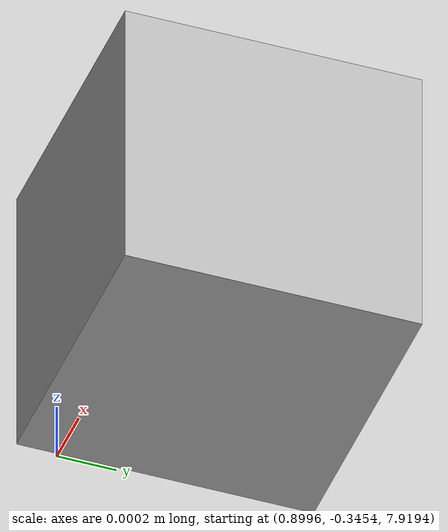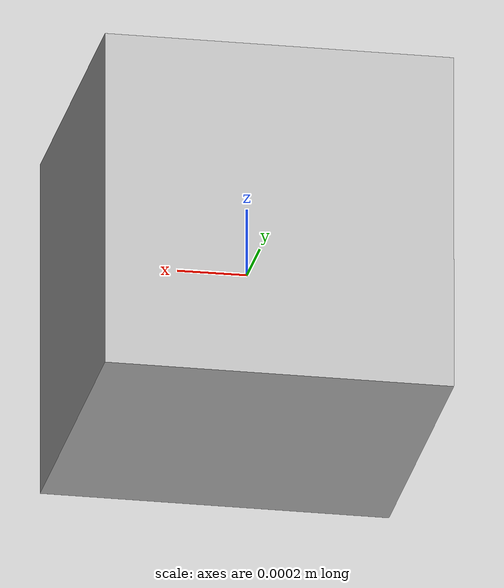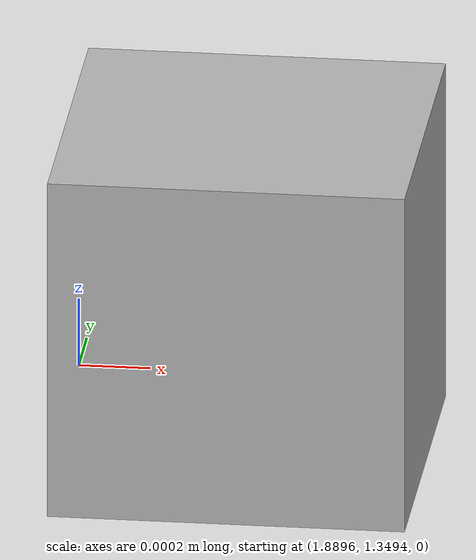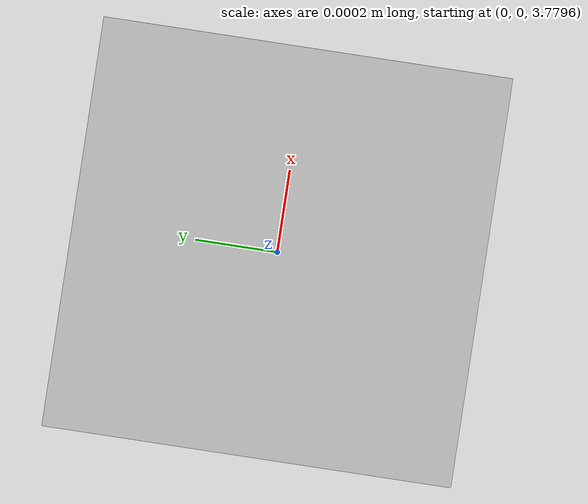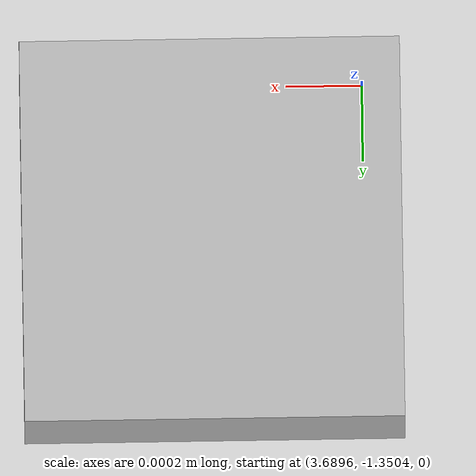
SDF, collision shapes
<?xml version="1.0" ?>
<sdf version="1.5">
  <model name="open_manipulator_p">
  <pose>0.0 0.0 0.0 0.0 0.0 0.0</pose>

    <link name="world"/>

    <!-- link 1 -->
    <link name="link1">
      <pose relative_to="world_fixed">0 0 0 0 -0 0</pose>
      <visual name="link1_visual">
        <pose>0 0 0 0 0 0</pose>
        <geometry>
          <mesh>
            <uri>model://open_manipulator_p/meshes/link1.stl</uri>
            <scale>0.001 0.001 0.001</scale>
          </mesh>
        </geometry>
        <material>grey</material>
      </visual>

      <collision name="link1_collision">
        <pose>0 0 0 0 0 0</pose>
        <geometry>
          <box>
            <size>0.001 0.001 0.001</size>
          </box>
        </geometry>
      </collision>

      <inertial>
        <pose>0 0 0 0 0 0</pose>
        <mass>9.4360595e-01</mass>
        <inertia>
          <ixx>1.0e-03</ixx>
          <ixy>0.0</ixy>
          <ixz>0.0</ixz>
          <iyx>0.0</iyx>
          <iyy>1.0e-03</iyy>
          <iyz>0.0</iyz>
          <izx>0.0</izx>
          <izy>0.0</izy>
          <izz>1.0e-03</izz>
        </inertia>
      </inertial>
    </link>

    <!-- link 2 -->
    <link name="link2">
      <pose relative_to="joint1">0 0 0 0 -0 0</pose>
      <visual name="link2_visual">
        <pose>0 0 0 0 0 0</pose>
        <geometry>
          <mesh>
            <uri>model://open_manipulator_p/meshes/link2.stl</uri>
            <scale>0.001 0.001 0.001</scale>
          </mesh>
        </geometry>
        <material>grey</material>
      </visual>

      <collision name="link2_collision">
        <pose>0 0 0 0 0 0</pose>
        <geometry>
          <box>
            <size>0.001 0.001 0.001</size>
          </box>
        </geometry>
      </collision>

      <inertial>
        <pose>0 0 0 0 0 0</pose>
        <mass>9.4360595e-01</mass>
        <inertia>
          <ixx>1.5694005e-03</ixx>
          <ixy>0.0</ixy>
          <ixz>0.0</ixz>
          <iyx>0.0</iyx>
          <iyy>4.5593385e-04</iyy>
          <iyz>6.4581824e-09</iyz>
          <izx>0.0</izx>
          <izy>6.4581824e-09</izy>
          <izz>1.5561809e-03</izz>
        </inertia>
      </inertial>
    </link>

    <!-- link 3 -->
    <link name="link3">
      <pose relative_to="joint2">0 0 0 0 -0 0</pose>
      <visual name="link3_visual">
        <pose>0 0 0 0 0 0</pose>
        <geometry>
          <mesh>
            <uri>model://open_manipulator_p/meshes/link3.stl</uri>
            <scale>0.001 0.001 0.001</scale>
          </mesh>
        </geometry>
        <material>grey</material>
      </visual>

      <collision name="link3_collision">
        <pose>0 0 0 0 0 0</pose>
        <geometry>
          <box>
            <size>0.001 0.001 0.001</size>
          </box>
        </geometry>
      </collision>

      <inertial>
        <pose>0 0 0 0 0 0</pose>
        <mass>1.3825862e+00</mass>
        <inertia>
          <ixx>6.7630430e-02</ixx>
          <ixy>-1.9988597e-05</ixy>
          <ixz>-5.7477571e-03</ixz>
          <iyx>-1.9988597e-05</iyx>
          <iyy>6.7208001e-024</iyy>
          <iyz>7.4823203e-05</iyz>
          <izx>-5.7477571e-03</izx>
          <izy>7.4823203e-05</izy>
          <izz>2.6031353e-03</izz>
        </inertia>
      </inertial>
    </link>

    <!-- link 4 -->
    <link name="link4">
      <pose relative_to="joint3">0 0 0 0 -0 0</pose>
      <visual name="link4_visual">
        <pose>0 0 0 0 0 0</pose>
        <geometry>
          <mesh>
            <uri>model://open_manipulator_p/meshes/link4.stl</uri>
            <scale>0.001 0.001 0.001</scale>
          </mesh>
        </geometry>
        <material>grey</material>
      </visual>

      <collision name="link4_collision">
        <pose>0 0 0 0 0 0</pose>
        <geometry>
          <box>
            <size>0.001 0.001 0.001</size>
          </box>
        </geometry>
      </collision>

      <inertial>
        <pose>0 0 0 0 0 0</pose>
        <mass>1.2126965e+00</mass>
        <inertia>
          <ixx>1.7985424e-01</ixx>
          <ixy>-9.9417476e-07</ixy>
          <ixz>-8.1564441e-053</ixz>
          <iyx>-9.9417476e-07</iyx>
          <iyy>1.7948679e-01</iyy>
          <iyz>-1.7705853e-05</iyz>
          <izx>-8.1564441e-05</izx>
          <izy>-1.7705853e-05</izy>
          <izz>1.1422079e-03</izz>
        </inertia>
      </inertial>
    </link>

    <!-- link 5 -->
    <link name="link5">
      <pose relative_to="joint4">0 0 0 0 -0 0</pose>
      <visual name="link5_visual">
        <pose>0 0 0 0 0 0</pose>
        <geometry>
          <mesh>
            <uri>model://open_manipulator_p/meshes/link5.stl</uri>
            <scale>0.001 0.001 0.001</scale>
          </mesh>
        </geometry>
        <material>grey</material>
      </visual>

      <collision name="link5_collision">
        <pose>0 0 0 0 0 0</pose>
        <geometry>
          <box>
            <size>0.001 0.001 0.001</size>
          </box>
        </geometry>
      </collision>

      <inertial>
        <pose>0 0 0 0 0 0</pose>
        <mass>4.6635550e-01</mass>
        <inertia>
          <ixx>1.2357713e-01</ixx>
          <ixy>-1.9465317e-09</ixy>
          <ixz>5.1228604e-07</ixz>
          <iyx>-1.9465317e-09</iyx>
          <iyy>1.2339567e-01</iyy>
          <iyz>5.3769657e-04</iyz>
          <izx>5.1228604e-07</izx>
          <izy>5.3769657e-04</izy>
          <izz>3.3216863e-04</izz>
        </inertia>
      </inertial>
    </link>

    <!-- link 6 -->
    <link name="link6">
      <pose relative_to="joint5">0 0 0 0 -0 0</pose>
      <visual name="link6_visual">
        <pose>0 0 0 0 0 0</pose>
        <geometry>
          <mesh>
            <uri>model://open_manipulator_p/meshes/link6.stl</uri>
            <scale>0.001 0.001 0.001</scale>
          </mesh>
        </geometry>
        <material>grey</material>
      </visual>

      <collision name="link6_collision">
        <pose>0 0 0 0 0 0</pose>
        <geometry>
          <box>
            <size>0.001 0.001 0.001</size>
          </box>
        </geometry>
      </collision>

      <inertial>
        <pose>0 0 0 0 0 0</pose>
        <mass>4.2561606e-01</mass>
        <inertia>
          <ixx>1.4881319e-01</ixx>
          <ixy>0.0000000e+00</ixy>
          <ixz>5.3435266e-07</ixz>
          <iyx>0.0000000e+00</iyx>
          <iyy>1.4872708e-01</iyy>
          <iyz>-4.3708754e-05</iyz>
          <izx>5.3435266e-07</izx>
          <izy>-4.3708754e-05</izy>
          <izz>2.1040082e-04</izz>
        </inertia>
      </inertial>
    </link>

    <!-- end link -->
    <link name="end_link">
      <pose relative_to="joint6">0 0 0 0 -0 0</pose>
      <visual name="end_link_visual">
        <pose>0 0 0 0 0 0</pose>
        <geometry>
          <mesh>
            <uri>model://open_manipulator_p/meshes/end_link.stl</uri>
            <scale>0.001 0.001 0.001</scale>
          </mesh>
        </geometry>
        <material>grey</material>
      </visual>

      <collision name="end_link_collision">
        <pose>0 0 0 0 0 0</pose>
        <geometry>
          <box>
            <size>0.001 0.001 0.001</size>
          </box>
        </geometry>
      </collision>

      <inertial>
        <pose>0 0 0 0 0 0</pose>
        <mass>0.01919</mass>
        <inertia>
          <ixx>1.25e-4</ixx>
          <ixy>0.0</ixy>
          <ixz>0.0</ixz>
          <iyy>1.25e-4</iyy>
          <iyz>0.0</iyz>
          <izz>1.25e-4</izz>
        </inertia>
      </inertial>
    </link>

    <!-- World fixed joint-->
    <joint name="world_fixed" type="fixed">
      <pose>0 0 0 0 0 0</pose>
      <parent>world</parent>
      <child>link1</child>
    </joint>

    <!-- Joint 1 -->
    <joint name="joint1" type="revolute">
      <parent>link1</parent>
      <child>link2</child>
      <pose>0.0 0.0 0.126 0 0 0</pose>
      <axis>
        <xyz>0 0 1</xyz>
      </axis>
      <limit velocity="6.5" effort="1000" lower="-1.57" upper="1.57" />
      <dynamics damping="0.7"/>
    </joint>

    <!-- Joint 2 -->
    <joint name="joint2" type="revolute">
      <parent>link2</parent>
      <child>link3</child>
      <pose>0.0 0.069 0.033 0 0 0</pose>
      <axis>
        <xyz>0 1 0</xyz>
      </axis>
      <limit velocity="6.5" effort="1000" lower="-1.57" upper="1.57" />
      <dynamics damping="0.7"/>
    </joint>

    <!-- Joint 3 -->
    <joint name="joint3" type="revolute">
      <parent>link3</parent>
      <child>link4</child>
      <pose>0.03000 -0.01150 0.26400 0 0 0</pose>
      <axis>
        <xyz>0 1 0</xyz>
      </axis>
      <limit velocity="6.5" effort="1000" lower="-1.57" upper="1.57" />
      <dynamics damping="0.7"/>
    </joint>

    <!-- Joint 4 -->
    <joint name="joint4" type="revolute">
      <parent>link4</parent>
      <child>link5</child>
      <pose>0.19500 -0.05750 0.03000 0 0 0</pose>
      <axis>
        <xyz>1 0 0</xyz>
      </axis>
      <limit velocity="6.5" effort="1000" lower="-1.57" upper="1.57" />
      <dynamics damping="0.7"/>
    </joint>

    <!-- Joint 5 -->
    <joint name="joint5" type="revolute">
      <parent>link5</parent>
      <child>link6</child>
      <pose>0.06300 0.04500 0.00000 0 0 0</pose>
      <axis>
        <xyz>0 1 0</xyz>
      </axis>
      <limit velocity="6.5" effort="1000" lower="-1.57" upper="1.57" />
      <dynamics damping="0.7"/>
    </joint>

    <!-- Joint 6 -->
    <joint name="joint6" type="revolute">
      <parent>link6</parent>
      <child>end_link</child>
      <pose>0.12300 -0.04500 0.00000 0 0 0</pose>
      <axis>
        <xyz>1 0 0</xyz>
      </axis>
      <limit velocity="6.5" effort="1000" lower="-1.57" upper="1.57" />
      <dynamics damping="0.7"/>
    </joint>
  </model>
</sdf>
